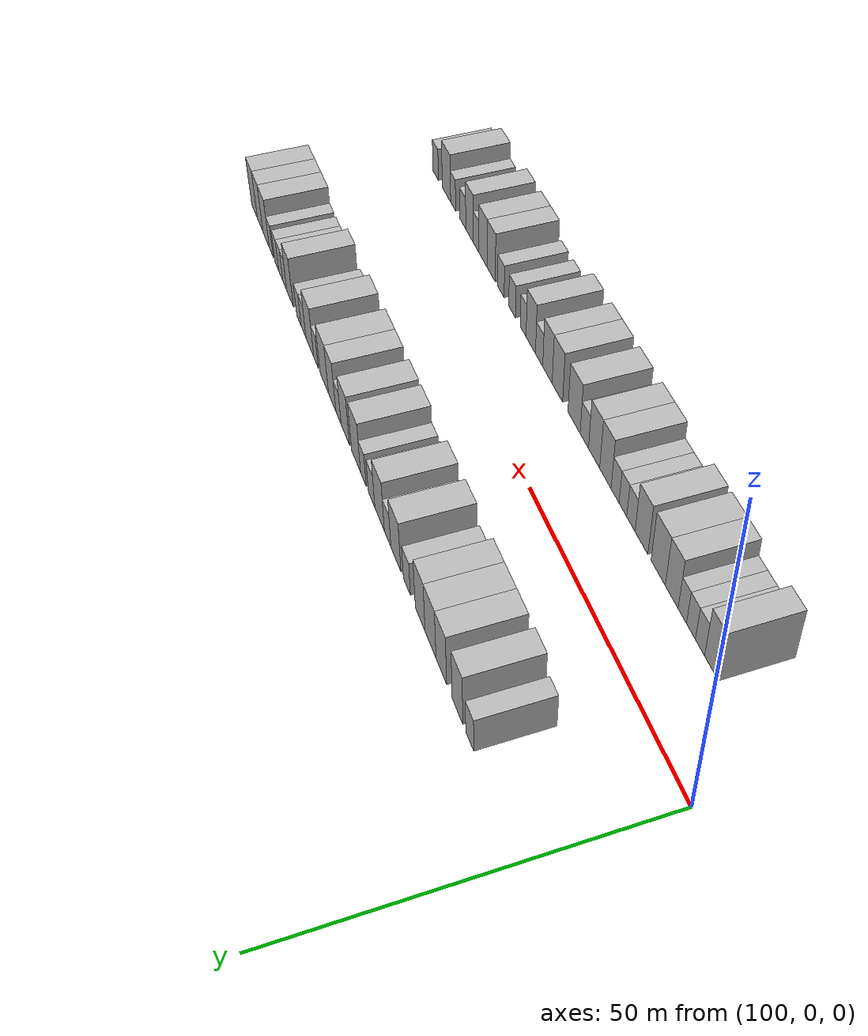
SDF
<sdf version="1.6">
 <world name="default">
  <model name="building_30">
   <static>1</static>
   <pose>116.0006 15.0000 0 0.000000 0.000000 1.570796</pose>
   <link name="link">
    <pose>0 0 3.00 0 0 0</pose>
    <collision name="collision"><geometry><box><size>10.0000 2.7520 6.0000</size></box></geometry></collision>
    <visual name="visual">
     <cast_shadows>0</cast_shadows>
     <geometry><box><size>10.0000 2.7520 6.0000</size></box></geometry>
     <material>
      <script>
       <uri>model://HANNAS_wall/materials/scripts</uri>
       <uri>model://HANNAS_wall/materials/textures</uri>
       <name>vrc/HANNAS_wall</name>
      </script>
     </material>
    </visual>
   </link>
  </model>
  <model name="building_31">
   <static>1</static>
   <pose>120.2804 15.0000 0 0.000000 0.000000 1.570796</pose>
   <link name="link">
    <pose>0 0 4.50 0 0 0</pose>
    <collision name="collision"><geometry><box><size>10.0000 3.8077 9.0000</size></box></geometry></collision>
    <visual name="visual">
     <cast_shadows>0</cast_shadows>
     <geometry><box><size>10.0000 3.8077 9.0000</size></box></geometry>
     <material>
      <script>
       <uri>model://HANNAS_wall/materials/scripts</uri>
       <uri>model://HANNAS_wall/materials/textures</uri>
       <name>vrc/HANNAS_wall</name>
      </script>
     </material>
    </visual>
   </link>
  </model>
  <model name="building_32">
   <static>1</static>
   <pose>126.1542 15.0000 0 0.000000 0.000000 1.570796</pose>
   <link name="link">
    <pose>0 0 4.50 0 0 0</pose>
    <collision name="collision"><geometry><box><size>10.0000 3.9397 9.0000</size></box></geometry></collision>
    <visual name="visual">
     <cast_shadows>0</cast_shadows>
     <geometry><box><size>10.0000 3.9397 9.0000</size></box></geometry>
     <material>
      <script>
       <uri>model://HANNAS_wall/materials/scripts</uri>
       <uri>model://HANNAS_wall/materials/textures</uri>
       <name>vrc/HANNAS_wall</name>
      </script>
     </material>
    </visual>
   </link>
  </model>
  <model name="building_33">
   <static>1</static>
   <pose>130.2297 15.0000 0 0.000000 0.000000 1.570796</pose>
   <link name="link">
    <pose>0 0 4.50 0 0 0</pose>
    <collision name="collision"><geometry><box><size>10.0000 4.2113 9.0000</size></box></geometry></collision>
    <visual name="visual">
     <cast_shadows>0</cast_shadows>
     <geometry><box><size>10.0000 4.2113 9.0000</size></box></geometry>
     <material>
      <script>
       <uri>model://HANNAS_wall/materials/scripts</uri>
       <uri>model://HANNAS_wall/materials/textures</uri>
       <name>vrc/HANNAS_wall</name>
      </script>
     </material>
    </visual>
   </link>
  </model>
  <model name="building_34">
   <static>1</static>
   <pose>134.2596 15.0000 0 0.000000 0.000000 1.570796</pose>
   <link name="link">
    <pose>0 0 4.50 0 0 0</pose>
    <collision name="collision"><geometry><box><size>10.0000 3.8485 9.0000</size></box></geometry></collision>
    <visual name="visual">
     <cast_shadows>0</cast_shadows>
     <geometry><box><size>10.0000 3.8485 9.0000</size></box></geometry>
     <material>
      <script>
       <uri>model://HANNAS_wall/materials/scripts</uri>
       <uri>model://HANNAS_wall/materials/textures</uri>
       <name>vrc/HANNAS_wall</name>
      </script>
     </material>
    </visual>
   </link>
  </model>
  <model name="building_35">
   <static>1</static>
   <pose>139.6347 15.0000 0 0.000000 0.000000 1.570796</pose>
   <link name="link">
    <pose>0 0 3.00 0 0 0</pose>
    <collision name="collision"><geometry><box><size>10.0000 2.9016 6.0000</size></box></geometry></collision>
    <visual name="visual">
     <cast_shadows>0</cast_shadows>
     <geometry><box><size>10.0000 2.9016 6.0000</size></box></geometry>
     <material>
      <script>
       <uri>model://HANNAS_wall/materials/scripts</uri>
       <uri>model://HANNAS_wall/materials/textures</uri>
       <name>vrc/HANNAS_wall</name>
      </script>
     </material>
    </visual>
   </link>
  </model>
  <model name="building_36">
   <static>1</static>
   <pose>144.2004 15.0000 0 0.000000 0.000000 1.570796</pose>
   <link name="link">
    <pose>0 0 4.50 0 0 0</pose>
    <collision name="collision"><geometry><box><size>10.0000 4.2298 9.0000</size></box></geometry></collision>
    <visual name="visual">
     <cast_shadows>0</cast_shadows>
     <geometry><box><size>10.0000 4.2298 9.0000</size></box></geometry>
     <material>
      <script>
       <uri>model://HANNAS_wall/materials/scripts</uri>
       <uri>model://HANNAS_wall/materials/textures</uri>
       <name>vrc/HANNAS_wall</name>
      </script>
     </material>
    </visual>
   </link>
  </model>
  <model name="building_37">
   <static>1</static>
   <pose>147.7412 15.0000 0 0.000000 0.000000 1.570796</pose>
   <link name="link">
    <pose>0 0 3.00 0 0 0</pose>
    <collision name="collision"><geometry><box><size>10.0000 2.8519 6.0000</size></box></geometry></collision>
    <visual name="visual">
     <cast_shadows>0</cast_shadows>
     <geometry><box><size>10.0000 2.8519 6.0000</size></box></geometry>
     <material>
      <script>
       <uri>model://HANNAS_wall/materials/scripts</uri>
       <uri>model://HANNAS_wall/materials/textures</uri>
       <name>vrc/HANNAS_wall</name>
      </script>
     </material>
    </visual>
   </link>
  </model>
  <model name="building_38">
   <static>1</static>
   <pose>151.2683 15.0000 0 0.000000 0.000000 1.570796</pose>
   <link name="link">
    <pose>0 0 4.50 0 0 0</pose>
    <collision name="collision"><geometry><box><size>10.0000 4.2023 9.0000</size></box></geometry></collision>
    <visual name="visual">
     <cast_shadows>0</cast_shadows>
     <geometry><box><size>10.0000 4.2023 9.0000</size></box></geometry>
     <material>
      <script>
       <uri>model://HANNAS_wall/materials/scripts</uri>
       <uri>model://HANNAS_wall/materials/textures</uri>
       <name>vrc/HANNAS_wall</name>
      </script>
     </material>
    </visual>
   </link>
  </model>
  <model name="building_39">
   <static>1</static>
   <pose>154.8601 15.0000 0 0.000000 0.000000 1.570796</pose>
   <link name="link">
    <pose>0 0 3.00 0 0 0</pose>
    <collision name="collision"><geometry><box><size>10.0000 2.9813 6.0000</size></box></geometry></collision>
    <visual name="visual">
     <cast_shadows>0</cast_shadows>
     <geometry><box><size>10.0000 2.9813 6.0000</size></box></geometry>
     <material>
      <script>
       <uri>model://HANNAS_wall/materials/scripts</uri>
       <uri>model://HANNAS_wall/materials/textures</uri>
       <name>vrc/HANNAS_wall</name>
      </script>
     </material>
    </visual>
   </link>
  </model>
  <model name="building_40">
   <static>1</static>
   <pose>158.6745 15.0000 0 0.000000 0.000000 1.570796</pose>
   <link name="link">
    <pose>0 0 3.00 0 0 0</pose>
    <collision name="collision"><geometry><box><size>10.0000 2.6474 6.0000</size></box></geometry></collision>
    <visual name="visual">
     <cast_shadows>0</cast_shadows>
     <geometry><box><size>10.0000 2.6474 6.0000</size></box></geometry>
     <material>
      <script>
       <uri>model://HANNAS_wall/materials/scripts</uri>
       <uri>model://HANNAS_wall/materials/textures</uri>
       <name>vrc/HANNAS_wall</name>
      </script>
     </material>
    </visual>
   </link>
  </model>
  <model name="building_41">
   <static>1</static>
   <pose>162.1215 15.0000 0 0.000000 0.000000 1.570796</pose>
   <link name="link">
    <pose>0 0 4.50 0 0 0</pose>
    <collision name="collision"><geometry><box><size>10.0000 4.2467 9.0000</size></box></geometry></collision>
    <visual name="visual">
     <cast_shadows>0</cast_shadows>
     <geometry><box><size>10.0000 4.2467 9.0000</size></box></geometry>
     <material>
      <script>
       <uri>model://HANNAS_wall/materials/scripts</uri>
       <uri>model://HANNAS_wall/materials/textures</uri>
       <name>vrc/HANNAS_wall</name>
      </script>
     </material>
    </visual>
   </link>
  </model>
  <model name="building_42">
   <static>1</static>
   <pose>167.3455 15.0000 0 0.000000 0.000000 1.570796</pose>
   <link name="link">
    <pose>0 0 4.50 0 0 0</pose>
    <collision name="collision"><geometry><box><size>10.0000 4.2012 9.0000</size></box></geometry></collision>
    <visual name="visual">
     <cast_shadows>0</cast_shadows>
     <geometry><box><size>10.0000 4.2012 9.0000</size></box></geometry>
     <material>
      <script>
       <uri>model://HANNAS_wall/materials/scripts</uri>
       <uri>model://HANNAS_wall/materials/textures</uri>
       <name>vrc/HANNAS_wall</name>
      </script>
     </material>
    </visual>
   </link>
  </model>
  <model name="building_43">
   <static>1</static>
   <pose>170.7555 15.0000 0 0.000000 0.000000 1.570796</pose>
   <link name="link">
    <pose>0 0 3.00 0 0 0</pose>
    <collision name="collision"><geometry><box><size>10.0000 2.6189 6.0000</size></box></geometry></collision>
    <visual name="visual">
     <cast_shadows>0</cast_shadows>
     <geometry><box><size>10.0000 2.6189 6.0000</size></box></geometry>
     <material>
      <script>
       <uri>model://HANNAS_wall/materials/scripts</uri>
       <uri>model://HANNAS_wall/materials/textures</uri>
       <name>vrc/HANNAS_wall</name>
      </script>
     </material>
    </visual>
   </link>
  </model>
  <model name="building_44">
   <static>1</static>
   <pose>173.9769 15.0000 0 0.000000 0.000000 1.570796</pose>
   <link name="link">
    <pose>0 0 4.50 0 0 0</pose>
    <collision name="collision"><geometry><box><size>10.0000 3.8240 9.0000</size></box></geometry></collision>
    <visual name="visual">
     <cast_shadows>0</cast_shadows>
     <geometry><box><size>10.0000 3.8240 9.0000</size></box></geometry>
     <material>
      <script>
       <uri>model://HANNAS_wall/materials/scripts</uri>
       <uri>model://HANNAS_wall/materials/textures</uri>
       <name>vrc/HANNAS_wall</name>
      </script>
     </material>
    </visual>
   </link>
  </model>
  <model name="building_45">
   <static>1</static>
   <pose>178.1349 15.0000 0 0.000000 0.000000 1.570796</pose>
   <link name="link">
    <pose>0 0 4.50 0 0 0</pose>
    <collision name="collision"><geometry><box><size>10.0000 4.4919 9.0000</size></box></geometry></collision>
    <visual name="visual">
     <cast_shadows>0</cast_shadows>
     <geometry><box><size>10.0000 4.4919 9.0000</size></box></geometry>
     <material>
      <script>
       <uri>model://HANNAS_wall/materials/scripts</uri>
       <uri>model://HANNAS_wall/materials/textures</uri>
       <name>vrc/HANNAS_wall</name>
      </script>
     </material>
    </visual>
   </link>
  </model>
  <model name="building_46">
   <static>1</static>
   <pose>182.5963 15.0000 0 0.000000 0.000000 1.570796</pose>
   <link name="link">
    <pose>0 0 3.00 0 0 0</pose>
    <collision name="collision"><geometry><box><size>10.0000 2.4309 6.0000</size></box></geometry></collision>
    <visual name="visual">
     <cast_shadows>0</cast_shadows>
     <geometry><box><size>10.0000 2.4309 6.0000</size></box></geometry>
     <material>
      <script>
       <uri>model://HANNAS_wall/materials/scripts</uri>
       <uri>model://HANNAS_wall/materials/textures</uri>
       <name>vrc/HANNAS_wall</name>
      </script>
     </material>
    </visual>
   </link>
  </model>
  <model name="building_47">
   <static>1</static>
   <pose>185.9915 15.0000 0 0.000000 0.000000 1.570796</pose>
   <link name="link">
    <pose>0 0 4.50 0 0 0</pose>
    <collision name="collision"><geometry><box><size>10.0000 4.3595 9.0000</size></box></geometry></collision>
    <visual name="visual">
     <cast_shadows>0</cast_shadows>
     <geometry><box><size>10.0000 4.3595 9.0000</size></box></geometry>
     <material>
      <script>
       <uri>model://HANNAS_wall/materials/scripts</uri>
       <uri>model://HANNAS_wall/materials/textures</uri>
       <name>vrc/HANNAS_wall</name>
      </script>
     </material>
    </visual>
   </link>
  </model>
  <model name="building_48">
   <static>1</static>
   <pose>189.5268 15.0000 0 0.000000 0.000000 1.570796</pose>
   <link name="link">
    <pose>0 0 3.00 0 0 0</pose>
    <collision name="collision"><geometry><box><size>10.0000 2.7111 6.0000</size></box></geometry></collision>
    <visual name="visual">
     <cast_shadows>0</cast_shadows>
     <geometry><box><size>10.0000 2.7111 6.0000</size></box></geometry>
     <material>
      <script>
       <uri>model://HANNAS_wall/materials/scripts</uri>
       <uri>model://HANNAS_wall/materials/textures</uri>
       <name>vrc/HANNAS_wall</name>
      </script>
     </material>
    </visual>
   </link>
  </model>
  <model name="building_49">
   <static>1</static>
   <pose>192.1768 15.0000 0 0.000000 0.000000 1.570796</pose>
   <link name="link">
    <pose>0 0 3.00 0 0 0</pose>
    <collision name="collision"><geometry><box><size>10.0000 2.5888 6.0000</size></box></geometry></collision>
    <visual name="visual">
     <cast_shadows>0</cast_shadows>
     <geometry><box><size>10.0000 2.5888 6.0000</size></box></geometry>
     <material>
      <script>
       <uri>model://HANNAS_wall/materials/scripts</uri>
       <uri>model://HANNAS_wall/materials/textures</uri>
       <name>vrc/HANNAS_wall</name>
      </script>
     </material>
    </visual>
   </link>
  </model>
  <model name="building_50">
   <static>1</static>
   <pose>197.3882 15.0000 0 0.000000 0.000000 1.570796</pose>
   <link name="link">
    <pose>0 0 4.50 0 0 0</pose>
    <collision name="collision"><geometry><box><size>10.0000 3.8341 9.0000</size></box></geometry></collision>
    <visual name="visual">
     <cast_shadows>0</cast_shadows>
     <geometry><box><size>10.0000 3.8341 9.0000</size></box></geometry>
     <material>
      <script>
       <uri>model://HANNAS_wall/materials/scripts</uri>
       <uri>model://HANNAS_wall/materials/textures</uri>
       <name>vrc/HANNAS_wall</name>
      </script>
     </material>
    </visual>
   </link>
  </model>
  <model name="building_51">
   <static>1</static>
   <pose>200.5221 15.0000 0 0.000000 0.000000 1.570796</pose>
   <link name="link">
    <pose>0 0 3.00 0 0 0</pose>
    <collision name="collision"><geometry><box><size>10.0000 2.4336 6.0000</size></box></geometry></collision>
    <visual name="visual">
     <cast_shadows>0</cast_shadows>
     <geometry><box><size>10.0000 2.4336 6.0000</size></box></geometry>
     <material>
      <script>
       <uri>model://HANNAS_wall/materials/scripts</uri>
       <uri>model://HANNAS_wall/materials/textures</uri>
       <name>vrc/HANNAS_wall</name>
      </script>
     </material>
    </visual>
   </link>
  </model>
  <model name="building_52">
   <static>1</static>
   <pose>202.9975 15.0000 0 0.000000 0.000000 1.570796</pose>
   <link name="link">
    <pose>0 0 3.00 0 0 0</pose>
    <collision name="collision"><geometry><box><size>10.0000 2.5173 6.0000</size></box></geometry></collision>
    <visual name="visual">
     <cast_shadows>0</cast_shadows>
     <geometry><box><size>10.0000 2.5173 6.0000</size></box></geometry>
     <material>
      <script>
       <uri>model://HANNAS_wall/materials/scripts</uri>
       <uri>model://HANNAS_wall/materials/textures</uri>
       <name>vrc/HANNAS_wall</name>
      </script>
     </material>
    </visual>
   </link>
  </model>
  <model name="building_53">
   <static>1</static>
   <pose>205.4827 15.0000 0 0.000000 0.000000 1.570796</pose>
   <link name="link">
    <pose>0 0 3.00 0 0 0</pose>
    <collision name="collision"><geometry><box><size>10.0000 2.4531 6.0000</size></box></geometry></collision>
    <visual name="visual">
     <cast_shadows>0</cast_shadows>
     <geometry><box><size>10.0000 2.4531 6.0000</size></box></geometry>
     <material>
      <script>
       <uri>model://HANNAS_wall/materials/scripts</uri>
       <uri>model://HANNAS_wall/materials/textures</uri>
       <name>vrc/HANNAS_wall</name>
      </script>
     </material>
    </visual>
   </link>
  </model>
  <model name="building_54">
   <static>1</static>
   <pose>208.9664 15.0000 0 0.000000 0.000000 1.570796</pose>
   <link name="link">
    <pose>0 0 3.00 0 0 0</pose>
    <collision name="collision"><geometry><box><size>10.0000 2.5142 6.0000</size></box></geometry></collision>
    <visual name="visual">
     <cast_shadows>0</cast_shadows>
     <geometry><box><size>10.0000 2.5142 6.0000</size></box></geometry>
     <material>
      <script>
       <uri>model://HANNAS_wall/materials/scripts</uri>
       <uri>model://HANNAS_wall/materials/textures</uri>
       <name>vrc/HANNAS_wall</name>
      </script>
     </material>
    </visual>
   </link>
  </model>
  <model name="building_55">
   <static>1</static>
   <pose>212.2727 15.0000 0 0.000000 0.000000 1.570796</pose>
   <link name="link">
    <pose>0 0 4.50 0 0 0</pose>
    <collision name="collision"><geometry><box><size>10.0000 4.0985 9.0000</size></box></geometry></collision>
    <visual name="visual">
     <cast_shadows>0</cast_shadows>
     <geometry><box><size>10.0000 4.0985 9.0000</size></box></geometry>
     <material>
      <script>
       <uri>model://HANNAS_wall/materials/scripts</uri>
       <uri>model://HANNAS_wall/materials/textures</uri>
       <name>vrc/HANNAS_wall</name>
      </script>
     </material>
    </visual>
   </link>
  </model>
  <model name="building_56">
   <static>1</static>
   <pose>216.1726 15.0000 0 0.000000 0.000000 1.570796</pose>
   <link name="link">
    <pose>0 0 4.50 0 0 0</pose>
    <collision name="collision"><geometry><box><size>10.0000 3.7013 9.0000</size></box></geometry></collision>
    <visual name="visual">
     <cast_shadows>0</cast_shadows>
     <geometry><box><size>10.0000 3.7013 9.0000</size></box></geometry>
     <material>
      <script>
       <uri>model://HANNAS_wall/materials/scripts</uri>
       <uri>model://HANNAS_wall/materials/textures</uri>
       <name>vrc/HANNAS_wall</name>
      </script>
     </material>
    </visual>
   </link>
  </model>
  <model name="building_57">
   <static>1</static>
   <pose>219.9809 15.0000 0 0.000000 0.000000 1.570796</pose>
   <link name="link">
    <pose>0 0 4.50 0 0 0</pose>
    <collision name="collision"><geometry><box><size>10.0000 3.9152 9.0000</size></box></geometry></collision>
    <visual name="visual">
     <cast_shadows>0</cast_shadows>
     <geometry><box><size>10.0000 3.9152 9.0000</size></box></geometry>
     <material>
      <script>
       <uri>model://HANNAS_wall/materials/scripts</uri>
       <uri>model://HANNAS_wall/materials/textures</uri>
       <name>vrc/HANNAS_wall</name>
      </script>
     </material>
    </visual>
   </link>
  </model>
  <model name="building_86">
   <static>1</static>
   <pose>116.0540 -15.0000 0 0.000000 0.000000 1.570796</pose>
   <link name="link">
    <pose>0 0 4.50 0 0 0</pose>
    <collision name="collision"><geometry><box><size>10.0000 3.8019 9.0000</size></box></geometry></collision>
    <visual name="visual">
     <cast_shadows>0</cast_shadows>
     <geometry><box><size>10.0000 3.8019 9.0000</size></box></geometry>
     <material>
      <script>
       <uri>model://HANNAS_wall/materials/scripts</uri>
       <uri>model://HANNAS_wall/materials/textures</uri>
       <name>vrc/HANNAS_wall</name>
      </script>
     </material>
    </visual>
   </link>
  </model>
  <model name="building_87">
   <static>1</static>
   <pose>119.2277 -15.0000 0 0.000000 0.000000 1.570796</pose>
   <link name="link">
    <pose>0 0 3.00 0 0 0</pose>
    <collision name="collision"><geometry><box><size>10.0000 2.5456 6.0000</size></box></geometry></collision>
    <visual name="visual">
     <cast_shadows>0</cast_shadows>
     <geometry><box><size>10.0000 2.5456 6.0000</size></box></geometry>
     <material>
      <script>
       <uri>model://HANNAS_wall/materials/scripts</uri>
       <uri>model://HANNAS_wall/materials/textures</uri>
       <name>vrc/HANNAS_wall</name>
      </script>
     </material>
    </visual>
   </link>
  </model>
  <model name="building_88">
   <static>1</static>
   <pose>121.7602 -15.0000 0 0.000000 0.000000 1.570796</pose>
   <link name="link">
    <pose>0 0 3.00 0 0 0</pose>
    <collision name="collision"><geometry><box><size>10.0000 2.5193 6.0000</size></box></geometry></collision>
    <visual name="visual">
     <cast_shadows>0</cast_shadows>
     <geometry><box><size>10.0000 2.5193 6.0000</size></box></geometry>
     <material>
      <script>
       <uri>model://HANNAS_wall/materials/scripts</uri>
       <uri>model://HANNAS_wall/materials/textures</uri>
       <name>vrc/HANNAS_wall</name>
      </script>
     </material>
    </visual>
   </link>
  </model>
  <model name="building_89">
   <static>1</static>
   <pose>124.2230 -15.0000 0 0.000000 0.000000 1.570796</pose>
   <link name="link">
    <pose>0 0 3.00 0 0 0</pose>
    <collision name="collision"><geometry><box><size>10.0000 2.4064 6.0000</size></box></geometry></collision>
    <visual name="visual">
     <cast_shadows>0</cast_shadows>
     <geometry><box><size>10.0000 2.4064 6.0000</size></box></geometry>
     <material>
      <script>
       <uri>model://HANNAS_wall/materials/scripts</uri>
       <uri>model://HANNAS_wall/materials/textures</uri>
       <name>vrc/HANNAS_wall</name>
      </script>
     </material>
    </visual>
   </link>
  </model>
  <model name="building_90">
   <static>1</static>
   <pose>127.3067 -15.0000 0 0.000000 0.000000 1.570796</pose>
   <link name="link">
    <pose>0 0 4.50 0 0 0</pose>
    <collision name="collision"><geometry><box><size>10.0000 3.7610 9.0000</size></box></geometry></collision>
    <visual name="visual">
     <cast_shadows>0</cast_shadows>
     <geometry><box><size>10.0000 3.7610 9.0000</size></box></geometry>
     <material>
      <script>
       <uri>model://HANNAS_wall/materials/scripts</uri>
       <uri>model://HANNAS_wall/materials/textures</uri>
       <name>vrc/HANNAS_wall</name>
      </script>
     </material>
    </visual>
   </link>
  </model>
  <model name="building_91">
   <static>1</static>
   <pose>131.3422 -15.0000 0 0.000000 0.000000 1.570796</pose>
   <link name="link">
    <pose>0 0 4.50 0 0 0</pose>
    <collision name="collision"><geometry><box><size>10.0000 4.3101 9.0000</size></box></geometry></collision>
    <visual name="visual">
     <cast_shadows>0</cast_shadows>
     <geometry><box><size>10.0000 4.3101 9.0000</size></box></geometry>
     <material>
      <script>
       <uri>model://HANNAS_wall/materials/scripts</uri>
       <uri>model://HANNAS_wall/materials/textures</uri>
       <name>vrc/HANNAS_wall</name>
      </script>
     </material>
    </visual>
   </link>
  </model>
  <model name="building_92">
   <static>1</static>
   <pose>136.4918 -15.0000 0 0.000000 0.000000 1.570796</pose>
   <link name="link">
    <pose>0 0 4.50 0 0 0</pose>
    <collision name="collision"><geometry><box><size>10.0000 3.9890 9.0000</size></box></geometry></collision>
    <visual name="visual">
     <cast_shadows>0</cast_shadows>
     <geometry><box><size>10.0000 3.9890 9.0000</size></box></geometry>
     <material>
      <script>
       <uri>model://HANNAS_wall/materials/scripts</uri>
       <uri>model://HANNAS_wall/materials/textures</uri>
       <name>vrc/HANNAS_wall</name>
      </script>
     </material>
    </visual>
   </link>
  </model>
  <model name="building_93">
   <static>1</static>
   <pose>139.8261 -15.0000 0 0.000000 0.000000 1.570796</pose>
   <link name="link">
    <pose>0 0 3.00 0 0 0</pose>
    <collision name="collision"><geometry><box><size>10.0000 2.6796 6.0000</size></box></geometry></collision>
    <visual name="visual">
     <cast_shadows>0</cast_shadows>
     <geometry><box><size>10.0000 2.6796 6.0000</size></box></geometry>
     <material>
      <script>
       <uri>model://HANNAS_wall/materials/scripts</uri>
       <uri>model://HANNAS_wall/materials/textures</uri>
       <name>vrc/HANNAS_wall</name>
      </script>
     </material>
    </visual>
   </link>
  </model>
  <model name="building_94">
   <static>1</static>
   <pose>142.4274 -15.0000 0 0.000000 0.000000 1.570796</pose>
   <link name="link">
    <pose>0 0 3.00 0 0 0</pose>
    <collision name="collision"><geometry><box><size>10.0000 2.5231 6.0000</size></box></geometry></collision>
    <visual name="visual">
     <cast_shadows>0</cast_shadows>
     <geometry><box><size>10.0000 2.5231 6.0000</size></box></geometry>
     <material>
      <script>
       <uri>model://HANNAS_wall/materials/scripts</uri>
       <uri>model://HANNAS_wall/materials/textures</uri>
       <name>vrc/HANNAS_wall</name>
      </script>
     </material>
    </visual>
   </link>
  </model>
  <model name="building_95">
   <static>1</static>
   <pose>145.0181 -15.0000 0 0.000000 0.000000 1.570796</pose>
   <link name="link">
    <pose>0 0 3.00 0 0 0</pose>
    <collision name="collision"><geometry><box><size>10.0000 2.6583 6.0000</size></box></geometry></collision>
    <visual name="visual">
     <cast_shadows>0</cast_shadows>
     <geometry><box><size>10.0000 2.6583 6.0000</size></box></geometry>
     <material>
      <script>
       <uri>model://HANNAS_wall/materials/scripts</uri>
       <uri>model://HANNAS_wall/materials/textures</uri>
       <name>vrc/HANNAS_wall</name>
      </script>
     </material>
    </visual>
   </link>
  </model>
  <model name="building_96">
   <static>1</static>
   <pose>148.2840 -15.0000 0 0.000000 0.000000 1.570796</pose>
   <link name="link">
    <pose>0 0 4.50 0 0 0</pose>
    <collision name="collision"><geometry><box><size>10.0000 3.8735 9.0000</size></box></geometry></collision>
    <visual name="visual">
     <cast_shadows>0</cast_shadows>
     <geometry><box><size>10.0000 3.8735 9.0000</size></box></geometry>
     <material>
      <script>
       <uri>model://HANNAS_wall/materials/scripts</uri>
       <uri>model://HANNAS_wall/materials/textures</uri>
       <name>vrc/HANNAS_wall</name>
      </script>
     </material>
    </visual>
   </link>
  </model>
  <model name="building_97">
   <static>1</static>
   <pose>152.1675 -15.0000 0 0.000000 0.000000 1.570796</pose>
   <link name="link">
    <pose>0 0 4.50 0 0 0</pose>
    <collision name="collision"><geometry><box><size>10.0000 3.8935 9.0000</size></box></geometry></collision>
    <visual name="visual">
     <cast_shadows>0</cast_shadows>
     <geometry><box><size>10.0000 3.8935 9.0000</size></box></geometry>
     <material>
      <script>
       <uri>model://HANNAS_wall/materials/scripts</uri>
       <uri>model://HANNAS_wall/materials/textures</uri>
       <name>vrc/HANNAS_wall</name>
      </script>
     </material>
    </visual>
   </link>
  </model>
  <model name="building_98">
   <static>1</static>
   <pose>155.6058 -15.0000 0 0.000000 0.000000 1.570796</pose>
   <link name="link">
    <pose>0 0 3.00 0 0 0</pose>
    <collision name="collision"><geometry><box><size>10.0000 2.9830 6.0000</size></box></geometry></collision>
    <visual name="visual">
     <cast_shadows>0</cast_shadows>
     <geometry><box><size>10.0000 2.9830 6.0000</size></box></geometry>
     <material>
      <script>
       <uri>model://HANNAS_wall/materials/scripts</uri>
       <uri>model://HANNAS_wall/materials/textures</uri>
       <name>vrc/HANNAS_wall</name>
      </script>
     </material>
    </visual>
   </link>
  </model>
  <model name="building_99">
   <static>1</static>
   <pose>159.3233 -15.0000 0 0.000000 0.000000 1.570796</pose>
   <link name="link">
    <pose>0 0 4.50 0 0 0</pose>
    <collision name="collision"><geometry><box><size>10.0000 4.4521 9.0000</size></box></geometry></collision>
    <visual name="visual">
     <cast_shadows>0</cast_shadows>
     <geometry><box><size>10.0000 4.4521 9.0000</size></box></geometry>
     <material>
      <script>
       <uri>model://HANNAS_wall/materials/scripts</uri>
       <uri>model://HANNAS_wall/materials/textures</uri>
       <name>vrc/HANNAS_wall</name>
      </script>
     </material>
    </visual>
   </link>
  </model>
  <model name="building_100">
   <static>1</static>
   <pose>165.5413 -15.0000 0 0.000000 0.000000 1.570796</pose>
   <link name="link">
    <pose>0 0 4.50 0 0 0</pose>
    <collision name="collision"><geometry><box><size>10.0000 3.9839 9.0000</size></box></geometry></collision>
    <visual name="visual">
     <cast_shadows>0</cast_shadows>
     <geometry><box><size>10.0000 3.9839 9.0000</size></box></geometry>
     <material>
      <script>
       <uri>model://HANNAS_wall/materials/scripts</uri>
       <uri>model://HANNAS_wall/materials/textures</uri>
       <name>vrc/HANNAS_wall</name>
      </script>
     </material>
    </visual>
   </link>
  </model>
  <model name="building_101">
   <static>1</static>
   <pose>169.3581 -15.0000 0 0.000000 0.000000 1.570796</pose>
   <link name="link">
    <pose>0 0 4.50 0 0 0</pose>
    <collision name="collision"><geometry><box><size>10.0000 3.6498 9.0000</size></box></geometry></collision>
    <visual name="visual">
     <cast_shadows>0</cast_shadows>
     <geometry><box><size>10.0000 3.6498 9.0000</size></box></geometry>
     <material>
      <script>
       <uri>model://HANNAS_wall/materials/scripts</uri>
       <uri>model://HANNAS_wall/materials/textures</uri>
       <name>vrc/HANNAS_wall</name>
      </script>
     </material>
    </visual>
   </link>
  </model>
  <model name="building_102">
   <static>1</static>
   <pose>172.6309 -15.0000 0 0.000000 0.000000 1.570796</pose>
   <link name="link">
    <pose>0 0 3.00 0 0 0</pose>
    <collision name="collision"><geometry><box><size>10.0000 2.8956 6.0000</size></box></geometry></collision>
    <visual name="visual">
     <cast_shadows>0</cast_shadows>
     <geometry><box><size>10.0000 2.8956 6.0000</size></box></geometry>
     <material>
      <script>
       <uri>model://HANNAS_wall/materials/scripts</uri>
       <uri>model://HANNAS_wall/materials/textures</uri>
       <name>vrc/HANNAS_wall</name>
      </script>
     </material>
    </visual>
   </link>
  </model>
  <model name="building_103">
   <static>1</static>
   <pose>175.9842 -15.0000 0 0.000000 0.000000 1.570796</pose>
   <link name="link">
    <pose>0 0 4.50 0 0 0</pose>
    <collision name="collision"><geometry><box><size>10.0000 3.8110 9.0000</size></box></geometry></collision>
    <visual name="visual">
     <cast_shadows>0</cast_shadows>
     <geometry><box><size>10.0000 3.8110 9.0000</size></box></geometry>
     <material>
      <script>
       <uri>model://HANNAS_wall/materials/scripts</uri>
       <uri>model://HANNAS_wall/materials/textures</uri>
       <name>vrc/HANNAS_wall</name>
      </script>
     </material>
    </visual>
   </link>
  </model>
  <model name="building_104">
   <static>1</static>
   <pose>179.1002 -15.0000 0 0.000000 0.000000 1.570796</pose>
   <link name="link">
    <pose>0 0 3.00 0 0 0</pose>
    <collision name="collision"><geometry><box><size>10.0000 2.4212 6.0000</size></box></geometry></collision>
    <visual name="visual">
     <cast_shadows>0</cast_shadows>
     <geometry><box><size>10.0000 2.4212 6.0000</size></box></geometry>
     <material>
      <script>
       <uri>model://HANNAS_wall/materials/scripts</uri>
       <uri>model://HANNAS_wall/materials/textures</uri>
       <name>vrc/HANNAS_wall</name>
      </script>
     </material>
    </visual>
   </link>
  </model>
  <model name="building_105">
   <static>1</static>
   <pose>183.7215 -15.0000 0 0.000000 0.000000 1.570796</pose>
   <link name="link">
    <pose>0 0 3.00 0 0 0</pose>
    <collision name="collision"><geometry><box><size>10.0000 2.8213 6.0000</size></box></geometry></collision>
    <visual name="visual">
     <cast_shadows>0</cast_shadows>
     <geometry><box><size>10.0000 2.8213 6.0000</size></box></geometry>
     <material>
      <script>
       <uri>model://HANNAS_wall/materials/scripts</uri>
       <uri>model://HANNAS_wall/materials/textures</uri>
       <name>vrc/HANNAS_wall</name>
      </script>
     </material>
    </visual>
   </link>
  </model>
  <model name="building_106">
   <static>1</static>
   <pose>188.5565 -15.0000 0 0.000000 0.000000 1.570796</pose>
   <link name="link">
    <pose>0 0 3.00 0 0 0</pose>
    <collision name="collision"><geometry><box><size>10.0000 2.8486 6.0000</size></box></geometry></collision>
    <visual name="visual">
     <cast_shadows>0</cast_shadows>
     <geometry><box><size>10.0000 2.8486 6.0000</size></box></geometry>
     <material>
      <script>
       <uri>model://HANNAS_wall/materials/scripts</uri>
       <uri>model://HANNAS_wall/materials/textures</uri>
       <name>vrc/HANNAS_wall</name>
      </script>
     </material>
    </visual>
   </link>
  </model>
  <model name="building_107">
   <static>1</static>
   <pose>192.8354 -15.0000 0 0.000000 0.000000 1.570796</pose>
   <link name="link">
    <pose>0 0 4.50 0 0 0</pose>
    <collision name="collision"><geometry><box><size>10.0000 3.7093 9.0000</size></box></geometry></collision>
    <visual name="visual">
     <cast_shadows>0</cast_shadows>
     <geometry><box><size>10.0000 3.7093 9.0000</size></box></geometry>
     <material>
      <script>
       <uri>model://HANNAS_wall/materials/scripts</uri>
       <uri>model://HANNAS_wall/materials/textures</uri>
       <name>vrc/HANNAS_wall</name>
      </script>
     </material>
    </visual>
   </link>
  </model>
  <model name="building_108">
   <static>1</static>
   <pose>196.6288 -15.0000 0 0.000000 0.000000 1.570796</pose>
   <link name="link">
    <pose>0 0 4.50 0 0 0</pose>
    <collision name="collision"><geometry><box><size>10.0000 3.8774 9.0000</size></box></geometry></collision>
    <visual name="visual">
     <cast_shadows>0</cast_shadows>
     <geometry><box><size>10.0000 3.8774 9.0000</size></box></geometry>
     <material>
      <script>
       <uri>model://HANNAS_wall/materials/scripts</uri>
       <uri>model://HANNAS_wall/materials/textures</uri>
       <name>vrc/HANNAS_wall</name>
      </script>
     </material>
    </visual>
   </link>
  </model>
  <model name="building_109">
   <static>1</static>
   <pose>199.7787 -15.0000 0 0.000000 0.000000 1.570796</pose>
   <link name="link">
    <pose>0 0 3.00 0 0 0</pose>
    <collision name="collision"><geometry><box><size>10.0000 2.4224 6.0000</size></box></geometry></collision>
    <visual name="visual">
     <cast_shadows>0</cast_shadows>
     <geometry><box><size>10.0000 2.4224 6.0000</size></box></geometry>
     <material>
      <script>
       <uri>model://HANNAS_wall/materials/scripts</uri>
       <uri>model://HANNAS_wall/materials/textures</uri>
       <name>vrc/HANNAS_wall</name>
      </script>
     </material>
    </visual>
   </link>
  </model>
  <model name="building_110">
   <static>1</static>
   <pose>202.7994 -15.0000 0 0.000000 0.000000 1.570796</pose>
   <link name="link">
    <pose>0 0 4.50 0 0 0</pose>
    <collision name="collision"><geometry><box><size>10.0000 3.6191 9.0000</size></box></geometry></collision>
    <visual name="visual">
     <cast_shadows>0</cast_shadows>
     <geometry><box><size>10.0000 3.6191 9.0000</size></box></geometry>
     <material>
      <script>
       <uri>model://HANNAS_wall/materials/scripts</uri>
       <uri>model://HANNAS_wall/materials/textures</uri>
       <name>vrc/HANNAS_wall</name>
      </script>
     </material>
    </visual>
   </link>
  </model>
  <model name="building_111">
   <static>1</static>
   <pose>206.0761 -15.0000 0 0.000000 0.000000 1.570796</pose>
   <link name="link">
    <pose>0 0 3.00 0 0 0</pose>
    <collision name="collision"><geometry><box><size>10.0000 2.9342 6.0000</size></box></geometry></collision>
    <visual name="visual">
     <cast_shadows>0</cast_shadows>
     <geometry><box><size>10.0000 2.9342 6.0000</size></box></geometry>
     <material>
      <script>
       <uri>model://HANNAS_wall/materials/scripts</uri>
       <uri>model://HANNAS_wall/materials/textures</uri>
       <name>vrc/HANNAS_wall</name>
      </script>
     </material>
    </visual>
   </link>
  </model>
  <model name="building_112">
   <static>1</static>
   <pose>210.7773 -15.0000 0 0.000000 0.000000 1.570796</pose>
   <link name="link">
    <pose>0 0 3.00 0 0 0</pose>
    <collision name="collision"><geometry><box><size>10.0000 2.4683 6.0000</size></box></geometry></collision>
    <visual name="visual">
     <cast_shadows>0</cast_shadows>
     <geometry><box><size>10.0000 2.4683 6.0000</size></box></geometry>
     <material>
      <script>
       <uri>model://HANNAS_wall/materials/scripts</uri>
       <uri>model://HANNAS_wall/materials/textures</uri>
       <name>vrc/HANNAS_wall</name>
      </script>
     </material>
    </visual>
   </link>
  </model>
  <model name="building_113">
   <static>1</static>
   <pose>214.1083 -15.0000 0 0.000000 0.000000 1.570796</pose>
   <link name="link">
    <pose>0 0 4.50 0 0 0</pose>
    <collision name="collision"><geometry><box><size>10.0000 4.1936 9.0000</size></box></geometry></collision>
    <visual name="visual">
     <cast_shadows>0</cast_shadows>
     <geometry><box><size>10.0000 4.1936 9.0000</size></box></geometry>
     <material>
      <script>
       <uri>model://HANNAS_wall/materials/scripts</uri>
       <uri>model://HANNAS_wall/materials/textures</uri>
       <name>vrc/HANNAS_wall</name>
      </script>
     </material>
    </visual>
   </link>
  </model>
  <model name="building_114">
   <static>1</static>
   <pose>219.6103 -15.0000 0 0.000000 0.000000 1.570796</pose>
   <link name="link">
    <pose>0 0 3.00 0 0 0</pose>
    <collision name="collision"><geometry><box><size>10.0000 2.8103 6.0000</size></box></geometry></collision>
    <visual name="visual">
     <cast_shadows>0</cast_shadows>
     <geometry><box><size>10.0000 2.8103 6.0000</size></box></geometry>
     <material>
      <script>
       <uri>model://HANNAS_wall/materials/scripts</uri>
       <uri>model://HANNAS_wall/materials/textures</uri>
       <name>vrc/HANNAS_wall</name>
      </script>
     </material>
    </visual>
   </link>
  </model>
 </world>
</sdf>
